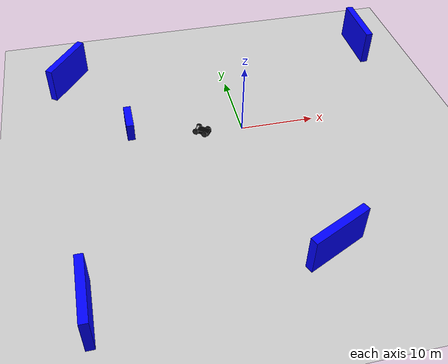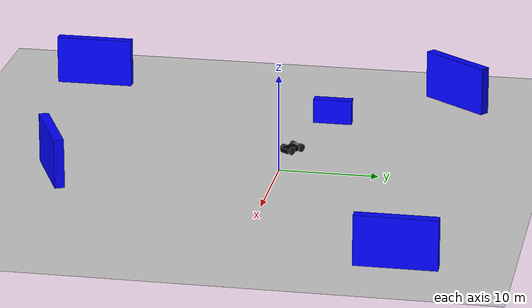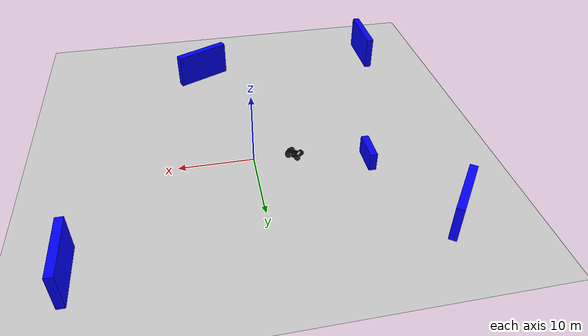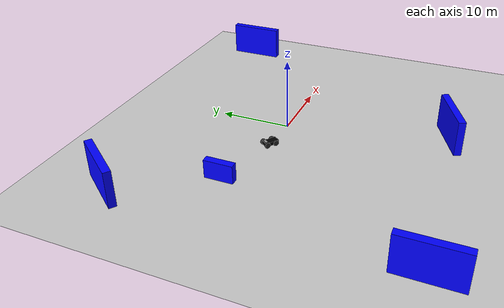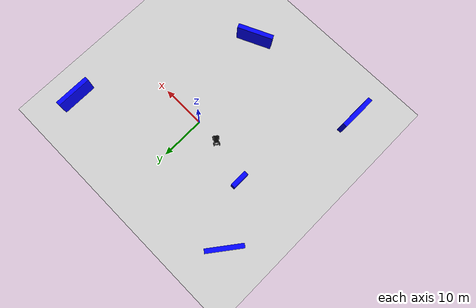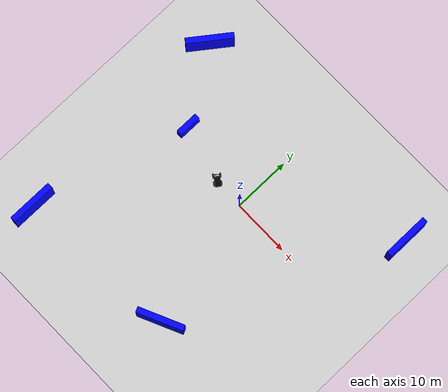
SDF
<?xml version="1.0" ?>
<sdf version="1.8">
    <world name="world_demo">
        <physics name="1ms" type="ignored">
            <max_step_size>0.001</max_step_size>
            <real_time_factor>1.0</real_time_factor>
        </physics>
        <plugin
            filename="libignition-gazebo-physics-system.so"
            name="ignition::gazebo::systems::Physics">
        </plugin>
        <plugin
            filename="libignition-gazebo-user-commands-system.so"
            name="ignition::gazebo::systems::UserCommands">
        </plugin>
        <plugin
            filename="libignition-gazebo-scene-broadcaster-system.so"
            name="ignition::gazebo::systems::SceneBroadcaster">
        </plugin>
        <plugin
            filename="libignition-gazebo-sensors-system.so"
            name="ignition::gazebo::systems::Sensors">
        </plugin>

        <!-- This section defines the GUI elements for the simulation environment -->
        <gui fullscreen="0">
            <!-- 3D scene -->
            <plugin filename="GzScene3D" name="3D View">
                <ignition-gui>
                    <title>3D View</title>
                    <property type="bool" key="showTitleBar">
                        false
                    </property>
                    <property type="string" key="state">docked</property>
                </ignition-gui>

                <engine>ogre2</engine>
                <scene>scene</scene>
                <ambient_light>0.4 0.4 0.4</ambient_light>
                <background_color>0.8 0.8 0.8</background_color>
            </plugin>

            <!-- World control -->
            <plugin filename="WorldControl" name="World control">
                <ignition-gui>
                    <title>World control</title>
                    <property type="bool" key="showTitleBar">false</property>
                    <property type="bool" key="resizable">false</property>
                    <property type="double" key="height">72</property>
                    <property type="double" key="width">121</property>
                    <property type="double" key="z">1</property>

                    <property type="string" key="state">floating</property>
                    <anchors target="3D View">
                        <line own="left" target="left"/>
                        <line own="bottom" target="bottom"/>
                    </anchors>
                </ignition-gui>

                <play_pause>true</play_pause>
                <step>true</step>
                <start_paused>true</start_paused>
                <service>/world/world_demo/control</service>
                <stats_topic>/world/world_demo/stats</stats_topic>
            </plugin>

            <!-- World statistics -->
            <plugin filename="WorldStats" name="World stats">
                <ignition-gui>
                    <title>World stats</title>
                    <property type="bool" key="showTitleBar">false</property>
                    <property type="bool" key="resizable">false</property>
                    <property type="double" key="height">110</property>
                    <property type="double" key="width">290</property>
                    <property type="double" key="z">1</property>

                    <property type="string" key="state">floating</property>
                    <anchors target="3D View">
                        <line own="right" target="right"/>
                        <line own="bottom" target="bottom"/>
                    </anchors>
                </ignition-gui>

                <sim_time>true</sim_time>
                <real_time>true</real_time>
                <real_time_factor>true</real_time_factor>
                <iterations>true</iterations>
                <topic>/world/world_demo/stats</topic>
            </plugin>
            <!-- Entity Tree -->
            <plugin filename="EntityTree" name="Entity tree">
            </plugin>
        </gui>

        <light type="directional" name="sun">
            <cast_shadows>true</cast_shadows>
            <pose>0 0 10 0 0 0</pose>
            <diffuse>0.8 0.8 0.8 1</diffuse>
            <specular>0.2 0.2 0.2 1</specular>
            <attenuation>
                <range>1000</range>
                <constant>0.9</constant>
                <linear>0.01</linear>
                <quadratic>0.001</quadratic>
            </attenuation>
            <direction>-0.5 0.1 -0.9</direction>
        </light>

        <!-- This model is for the ground plane, so that the robots have a surface to interact with. -->
        <model name="ground_plane">
            <static>true</static>
            <link name="link">
                <collision name="collision">
                <geometry>
                    <plane>
                    <normal>0 0 1</normal>
                    </plane>
                </geometry>
                </collision>
                <visual name="visual">
                <geometry>
                    <plane>
                    <normal>0 0 1</normal>
                    <size>100 100</size>
                    </plane>
                </geometry>
                <material>
                    <ambient>0.8 0.8 0.8 1</ambient>
                    <diffuse>0.8 0.8 0.8 1</diffuse>
                    <specular>0.8 0.8 0.8 1</specular>
                </material>
                </visual>
            </link>
        </model>

        <!-- Moving Forward Left-->
        <plugin filename="libignition-gazebo-triggered-publisher-system.so"
                name="ignition::gazebo::systems::TriggeredPublisher">
            <input type="ignition.msgs.Int32" topic="/keyboard/keypress">
                <match field="data">81</match>
            </input>
            <output type="ignition.msgs.Twist" topic="/cmd_vel">
                linear: {x: 1.5}, angular: {z: 0.10}
            </output>
        </plugin>
        <!-- Moving Forward -->
        <plugin filename="libignition-gazebo-triggered-publisher-system.so"
                name="ignition::gazebo::systems::TriggeredPublisher">
            <input type="ignition.msgs.Int32" topic="/keyboard/keypress">
                <match field="data">87</match>
            </input>
            <output type="ignition.msgs.Twist" topic="/cmd_vel">
                linear: {x: 1.5}, angular: {z: 0.0}
            </output>
        </plugin>
        <!-- Moving Right Forward -->
        <plugin filename="libignition-gazebo-triggered-publisher-system.so"
                name="ignition::gazebo::systems::TriggeredPublisher">
            <input type="ignition.msgs.Int32" topic="/keyboard/keypress">
                <match field="data">69</match>
            </input>
            <output type="ignition.msgs.Twist" topic="/cmd_vel">
                linear: {x: 1.5}, angular: {z: -0.25}
            </output>
        </plugin>
        <!-- Rotate Left -->
        <plugin filename="libignition-gazebo-triggered-publisher-system.so"
                name="ignition::gazebo::systems::TriggeredPublisher">
            <input type="ignition.msgs.Int32" topic="/keyboard/keypress">
                <match field="data">65</match>
            </input>
            <output type="ignition.msgs.Twist" topic="/cmd_vel">
                linear: {x: 1.0}, angular: {z: 0.5}
            </output>
        </plugin>
        <!-- Freeze -->
        <plugin filename="libignition-gazebo-triggered-publisher-system.so"
                name="ignition::gazebo::systems::TriggeredPublisher">
            <input type="ignition.msgs.Int32" topic="/keyboard/keypress">
                <match field="data">83</match>
            </input>
            <output type="ignition.msgs.Twist" topic="/cmd_vel">
                linear: {x: 0.0}, angular: {z: 0.0}
            </output>
        </plugin>
        <!-- Rotate Right -->
        <plugin filename="libignition-gazebo-triggered-publisher-system.so"
                name="ignition::gazebo::systems::TriggeredPublisher">
            <input type="ignition.msgs.Int32" topic="/keyboard/keypress">
                <match field="data">68</match>
            </input>
            <output type="ignition.msgs.Twist" topic="/cmd_vel">
                linear: {x: 1.0}, angular: {z: -0.5}
            </output>
        </plugin>
        <!-- Moving Left Backward -->
        <plugin filename="libignition-gazebo-triggered-publisher-system.so"
                name="ignition::gazebo::systems::TriggeredPublisher">
            <input type="ignition.msgs.Int32" topic="/keyboard/keypress">
                <match field="data">90</match>
            </input>
            <output type="ignition.msgs.Twist" topic="/cmd_vel">
                linear: {x: -1.5}, angular: {z: -0.25}
            </output>
        </plugin>
        <!-- Moving Backwards -->
        <plugin filename="libignition-gazebo-triggered-publisher-system.so"
                name="ignition::gazebo::systems::TriggeredPublisher">
            <input type="ignition.msgs.Int32" topic="/keyboard/keypress">
                <match field="data">88</match>
            </input>
            <output type="ignition.msgs.Twist" topic="/cmd_vel">
                linear: {x: -1.5}, angular: {z: 0.0}
            </output>
        </plugin>
        <!-- Moving Right Backwards -->
        <plugin filename="libignition-gazebo-triggered-publisher-system.so"
                name="ignition::gazebo::systems::TriggeredPublisher">
            <input type="ignition.msgs.Int32" topic="/keyboard/keypress">
                <match field="data">67</match>
            </input>
            <output type="ignition.msgs.Twist" topic="/cmd_vel">
                linear: {x: -1.5}, angular: {z: 0.25}
            </output>
        </plugin>

        <!-- This is what defines the walls in the simulation -->
        <model name='first_wall'>
            <static>true</static>
            <pose>-15 3 0 0 0 0</pose>
            <link name='box'>
                <pose/>
                <visual name='visual'>
                    <geometry>
                        <box>
                            <size>1.0 4.0 5.0</size>
                        </box>
                    </geometry>
                    <!--let's add color to our link-->
                    <material>
                        <ambient>0.0 0.0 1.0 1</ambient>
                        <diffuse>0.0 0.0 1.0 1</diffuse>
                        <specular>0.0 0.0 1.0 1</specular>
                    </material>
                </visual>
                <collision name='collision'>
                    <geometry>
                        <box>
                            <size>1.0 4.0 5.0</size>
                        </box>
                    </geometry>
                </collision>
            </link>
        </model>
        <model name='second_wall'>
            <static>true</static>
            <pose>5 -22 2.5 0 0 2</pose>
            <link name='box'>
                <pose/>
                <visual name='visual'>
                    <geometry>
                        <box>
                            <size>1.0 8.0 5.0</size>
                        </box>
                    </geometry>
                    <!--let's add color to our link-->
                    <material>
                        <ambient>0.0 0.0 1.0 1</ambient>
                        <diffuse>0.0 0.0 1.0 1</diffuse>
                        <specular>0.0 0.0 1.0 1</specular>
                    </material>
                </visual>
                <collision name='collision'>
                    <geometry>
                        <box>
                            <size>1.0 8.0 5.0</size>
                        </box>
                    </geometry>
                </collision>
            </link>
        </model>
        <model name='third_wall'>
            <static>true</static>
            <pose>22.5 15 2.5 0 0 0</pose>
            <link name='box'>
                <pose/>
                <visual name='visual'>
                    <geometry>
                        <box>
                            <size>1.0 8.0 5.0</size>
                        </box>
                    </geometry>
                    <!--let's add color to our link-->
                    <material>
                        <ambient>0.0 0.0 1.0 1</ambient>
                        <diffuse>0.0 0.0 1.0 1</diffuse>
                        <specular>0.0 0.0 1.0 1</specular>
                    </material>
                </visual>
                <collision name='collision'>
                    <geometry>
                        <box>
                            <size>1.0 8.0 5.0</size>
                        </box>
                    </geometry>
                </collision>
            </link>
        </model>
        <model name='fourth_wall'>
            <static>true</static>
            <pose>-22.5 15 2.5 0 0 2.5</pose>
            <link name='box'>
                <pose/>
                <visual name='visual'>
                    <geometry>
                        <box>
                            <size>1.0 8.0 5.0</size>
                        </box>
                    </geometry>
                    <!--let's add color to our link-->
                    <material>
                        <ambient>0.0 0.0 1.0 1</ambient>
                        <diffuse>0.0 0.0 1.0 1</diffuse>
                        <specular>0.0 0.0 1.0 1</specular>
                    </material>
                </visual>
                <collision name='collision'>
                    <geometry>
                        <box>
                            <size>1.0 8.0 5.0</size>
                        </box>
                    </geometry>
                </collision>
            </link>
        </model>
        <model name='fifth_wall'>
            <static>true</static>
            <pose>-22.5 -24 2.5 0 0 0</pose>
            <link name='box'>
                <pose/>
                <visual name='visual'>
                    <geometry>
                        <box>
                            <size>1.0 8.0 5.0</size>
                        </box>
                    </geometry>
                    <!--let's add color to our link-->
                    <material>
                        <ambient>0.0 0.0 1.0 1</ambient>
                        <diffuse>0.0 0.0 1.0 1</diffuse>
                        <specular>0.0 0.0 1.0 1</specular>
                    </material>
                </visual>
                <collision name='collision'>
                    <geometry>
                        <box>
                            <size>1.0 8.0 5.0</size>
                        </box>
                    </geometry>
                </collision>
            </link>
        </model>

        <!-- This is what defines what the robot looks like and how it behaves
         in the simulation environment. -->
        <model name='ackermann_robot' canonical_link='chassis'>
            <pose relative_to='world'>-5 0 0 0 0 2.5</pose>
            <link name='chassis'>
                <pose relative_to='__model__'>0.5 0 0.4 0 0 0</pose>
                <inertial>
                    <mass>1.14395</mass>
                    <inertia>
                        <ixx>0.095329</ixx>
                        <ixy>0</ixy>
                        <ixz>0</ixz>
                        <iyy>0.381317</iyy>
                        <iyz>0</iyz>
                        <izz>0.476646</izz>
                    </inertia>
                </inertial>
                <visual name='visual'>
                    <geometry>
                        <box>
                            <size>2.0 1.0 0.5</size>
                        </box>
                    </geometry>
                    <material>
                        <ambient>0.0 0.0 0.0 1</ambient>
                        <diffuse>0.0 0.0 0.0 1</diffuse>
                        <specular>0.0 0.0 0.0 1</specular>
                    </material>
                </visual>
                <collision name='collision'>
                    <geometry>
                        <box>
                            <size>2.0 1.0 0.5</size>
                        </box>
                    </geometry>
                </collision>
            </link>

            <link name="camera_link">
                <pose relative_to="chassis">0.75 0 0.3 0 0 0</pose>
                <visual name="visual">
                    <geometry>
                        <box>
                            <size>0.25 0.75 0.1</size>
                        </box>
                    </geometry>
                    <material>
                        <ambient>0.3 0.3 0.3 1</ambient>
                        <diffuse>0.7 0.7 0.7 1</diffuse>
                        <specular>0.8 0.8 0.8 1</specular>
                    </material>
                </visual>

                <sensor name="depth_camera" type="depth">
                    <always_on>1</always_on>          <!-- critical: sensor starts immediately -->
                    <update_rate>10</update_rate>
                    <topic>/model/robot/link/camera/depth/image</topic> <!-- match ros_gz_bridge topic -->
                    <camera>
                        <horizontal_fov>1.05</horizontal_fov>
                        <image>
                            <width>640</width>
                            <height>480</height>
                            <format>R8G8B8</format>
                        </image>
                        <clip>
                            <near>0.1</near>
                            <far>10.0</far>
                        </clip>
                    </camera>
                </sensor>
            </link>
            <joint name="camera_joint" type="fixed">
                <parent>chassis</parent>
                <child>camera_link</child>
            </joint>

            <link name='back_left_wheel'>
                <pose relative_to="chassis">-0.5 0.6 0 -1.5707 0 0</pose>
                <inertial>
                    <mass>1</mass>
                    <inertia>
                        <ixx>0.043333</ixx>
                        <ixy>0</ixy>
                        <ixz>0</ixz>
                        <iyy>0.043333</iyy>
                        <iyz>0</iyz>
                        <izz>0.08</izz>
                    </inertia>
                </inertial>
                <visual name='visual'>
                    <geometry>
                        <cylinder>
                            <radius>0.4</radius>
                            <length>0.2</length>
                        </cylinder>
                    </geometry>
                    <material>
                        <ambient>0.1 0.1 0.1 1</ambient>
                        <diffuse>0.15 0.15 0.15 1</diffuse>
                        <specular>0.01 0.01 0.01 1</specular>
                    </material>
                </visual>
                <collision name='collision'>
                    <geometry>
                        <cylinder>
                            <radius>0.4</radius>
                            <length>0.2</length>
                        </cylinder>
                    </geometry>
                </collision>
            </link>
           <link name='front_left_wheel'>
                <pose relative_to="chassis">0.8 0.6 0 -1.5707 0 0</pose>
                <inertial>
                    <mass>1</mass>
                    <inertia>
                        <ixx>0.043333</ixx>
                        <ixy>0</ixy>
                        <ixz>0</ixz>
                        <iyy>0.043333</iyy>
                        <iyz>0</iyz>
                        <izz>0.08</izz>
                    </inertia>
                </inertial>
                <visual name='visual'>
                    <geometry>
                        <cylinder>
                            <radius>0.4</radius>
                            <length>0.2</length>
                        </cylinder>
                    </geometry>
                    <material>
                        <ambient>0.1 0.1 0.1 1</ambient>
                        <diffuse>0.15 0.15 0.15 1</diffuse>
                        <specular>0.01 0.01 0.01 1</specular>
                    </material>
                </visual>
                <collision name='collision'>
                    <geometry>
                        <cylinder>
                            <radius>0.4</radius>
                            <length>0.2</length>
                        </cylinder>
                    </geometry>
                </collision>
            </link>
            <link name='front_right_wheel'>
                <pose relative_to="chassis">0.8 -0.6 0 -1.5707 0 0</pose>
                <inertial>
                    <mass>1</mass>
                    <inertia>
                        <ixx>0.043333</ixx>
                        <ixy>0</ixy>
                        <ixz>0</ixz>
                        <iyy>0.043333</iyy>
                        <iyz>0</iyz>
                        <izz>0.08</izz>
                    </inertia>
                </inertial>
                <visual name='visual'>
                    <geometry>
                        <cylinder>
                            <radius>0.4</radius>
                            <length>0.2</length>
                        </cylinder>
                    </geometry>
                    <material>
                        <ambient>0.1 0.1 0.1 1</ambient>
                        <diffuse>0.15 0.15 0.15 1</diffuse>
                        <specular>0.01 0.01 0.01 1</specular>
                    </material>
                </visual>
                <collision name='collision'>
                    <geometry>
                        <cylinder>
                            <radius>0.4</radius>
                            <length>0.2</length>
                        </cylinder>
                    </geometry>
                </collision>
            </link>
            <link name='back_right_wheel'>
                <pose relative_to="chassis">-0.5 -0.6 0 -1.5707 0 0</pose> <!--angles are in radian-->
                <inertial>
                    <mass>1</mass>
                    <inertia>
                        <ixx>0.043333</ixx>
                        <ixy>0</ixy>
                        <ixz>0</ixz>
                        <iyy>0.043333</iyy>
                        <iyz>0</iyz>
                        <izz>0.08</izz>
                    </inertia>
                </inertial>
                <visual name='visual'>
                    <geometry>
                        <cylinder>
                            <radius>0.4</radius>
                            <length>0.2</length>
                        </cylinder>
                    </geometry>
                    <material>
                        <ambient>0.1 0.1 0.1 1</ambient>
                        <diffuse>0.15 0.15 0.15 1</diffuse>
                        <specular>0.01 0.01 0.01 1</specular>
                    </material>
                </visual>
                <collision name='collision'>
                    <geometry>
                        <cylinder>
                            <radius>0.4</radius>
                            <length>0.2</length>
                        </cylinder>
                    </geometry>
                </collision>
            </link>

            <!-- This is where we define the steering mechanism for the front wheels -->
            <link name="front_left_steer">
                <pose relative_to="chassis">0.8 0.6 0 0 0 0</pose>
            </link>
            <link name="front_right_steer">
                <pose relative_to="chassis">0.8 -0.6 0 0 0 0</pose>
            </link>
            <joint name='front_left_steer_joint' type='revolute'>
                <parent>chassis</parent>
                <child>front_left_steer</child>
                <axis>
                    <xyz>0 0 1</xyz>
                    <limit>
                        <lower>-0.6</lower>    <!---45 degrees in radians-->
                        <upper>0.6</upper>     <!--45 degrees in radians-->
                        <effort>1000000</effort>
                    </limit>
                </axis>
            </joint>
            <joint name='front_right_steer_joint' type='revolute'>
                <parent>chassis</parent>
                <child>front_right_steer</child>
                <axis>
                    <xyz>0 0 1</xyz>
                    <limit>
                        <lower>-0.6</lower>    <!---45 degrees in radians-->
                        <upper>0.6</upper>     <!--45 degrees in radians-->
                        <effort>1000000</effort>
                    </limit>
                </axis>
            </joint>
            <joint name='front_left_wheel_joint' type='revolute'>
                <parent>front_left_steer</parent>
                <child>front_left_wheel</child>
                <axis>
                    <xyz>0 0 1</xyz>
                </axis>
            </joint>
            <joint name='front_right_wheel_joint' type='revolute'>
                <parent>front_right_steer</parent>
                <child>front_right_wheel</child>
                <axis>
                    <xyz>0 0 1</xyz>
                </axis>
            </joint>
            <joint name='back_left_wheel_joint' type='revolute'>
                <pose relative_to='back_left_wheel'/>
                <parent>chassis</parent>
                <child>back_left_wheel</child>
                <axis>
                    <xyz expressed_in='__model__'>0 1 0</xyz> <!--can be defined as any frame or even arbitrary frames-->
                    <limit>
                        <lower>-1.79769e+308</lower>    <!--negative infinity-->
                        <upper>1.79769e+308</upper>     <!--positive infinity-->
                    </limit>
                </axis>
            </joint>
            <joint name='back_right_wheel_joint' type='revolute'>
                <pose relative_to='back_right_wheel'/>
                <parent>chassis</parent>
                <child>back_right_wheel</child>
                <axis>
                    <xyz expressed_in='__model__'>0 1 0</xyz>
                    <limit>
                        <lower>-1.79769e+308</lower>    <!--negative infinity-->
                        <upper>1.79769e+308</upper>     <!--positive infinity-->
                    </limit>
                </axis>
            </joint>

            <!-- This plugin enables ackermann steering for the robot -->
            <plugin
                filename="libignition-gazebo-ackermann-steering-system.so"
                name="ignition::gazebo::systems::AckermannSteering">
                <left_steering_joint>front_left_steer_joint</left_steering_joint>
                <right_steering_joint>front_right_steer_joint</right_steering_joint>

                <left_joint>back_left_wheel_joint</left_joint>
                <right_joint>back_right_wheel_joint</right_joint>

                <wheel_separation>1.2</wheel_separation>
                <kingpin_width>1.2</kingpin_width>
                <wheel_base>1.3</wheel_base>
                <wheel_radius>0.4</wheel_radius>

                <topic>cmd_vel</topic>
                <odom_publish_frequency>30</odom_publish_frequency>
                <publish_odom_tf>true</publish_odom_tf>
            </plugin>
            <!-- This plugin broadcasts the position of all of the ackermann_robots links and joints -->
            <plugin
                filename="libignition-gazebo-pose-publisher-system.so"
                name="ignition::gazebo::systems::PosePublisher">
                <publish_link_pose>true</publish_link_pose>
                <publish_sensor_pose>true</publish_sensor_pose>
                <publish_collision_pose>false</publish_collision_pose>
                <publish_visual_pose>false</publish_visual_pose>
                <publish_nested_model_pose>true</publish_nested_model_pose>
                <use_pose_vector_msg>true</use_pose_vector_msg>
                <static_publisher>true</static_publisher>
                <static_update_frequency>1</static_update_frequency>
            </plugin>
        </model>
    </world>
</sdf>
